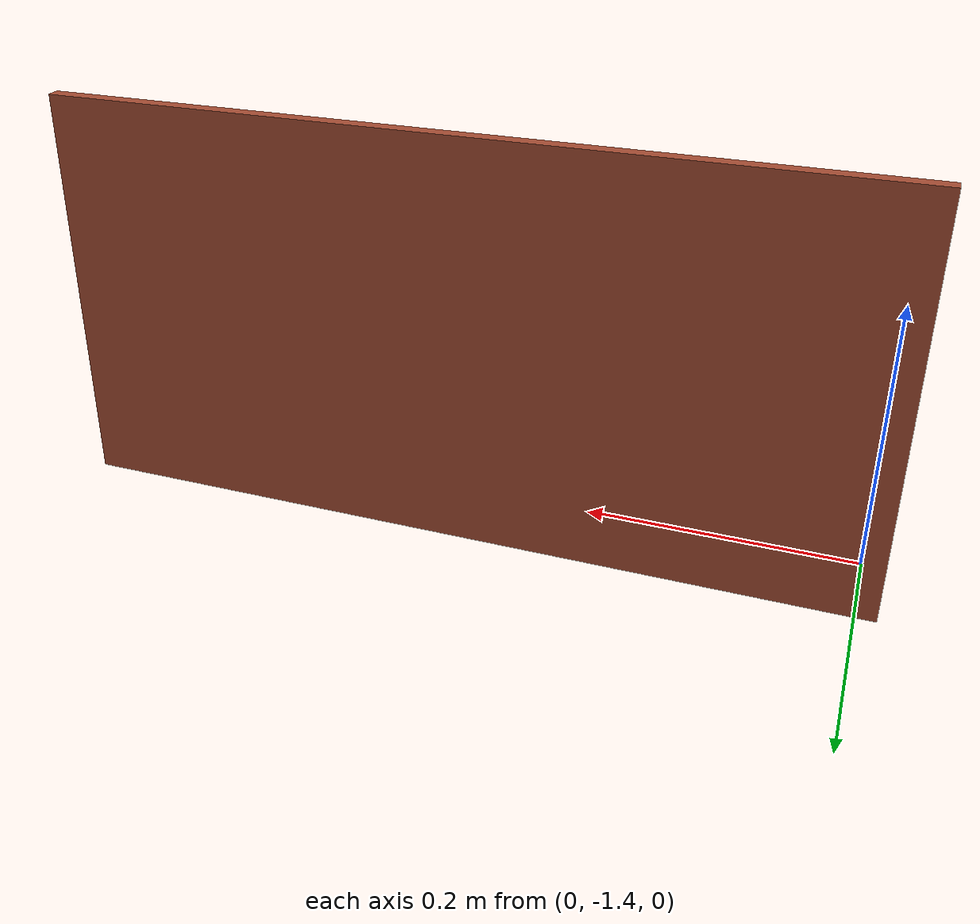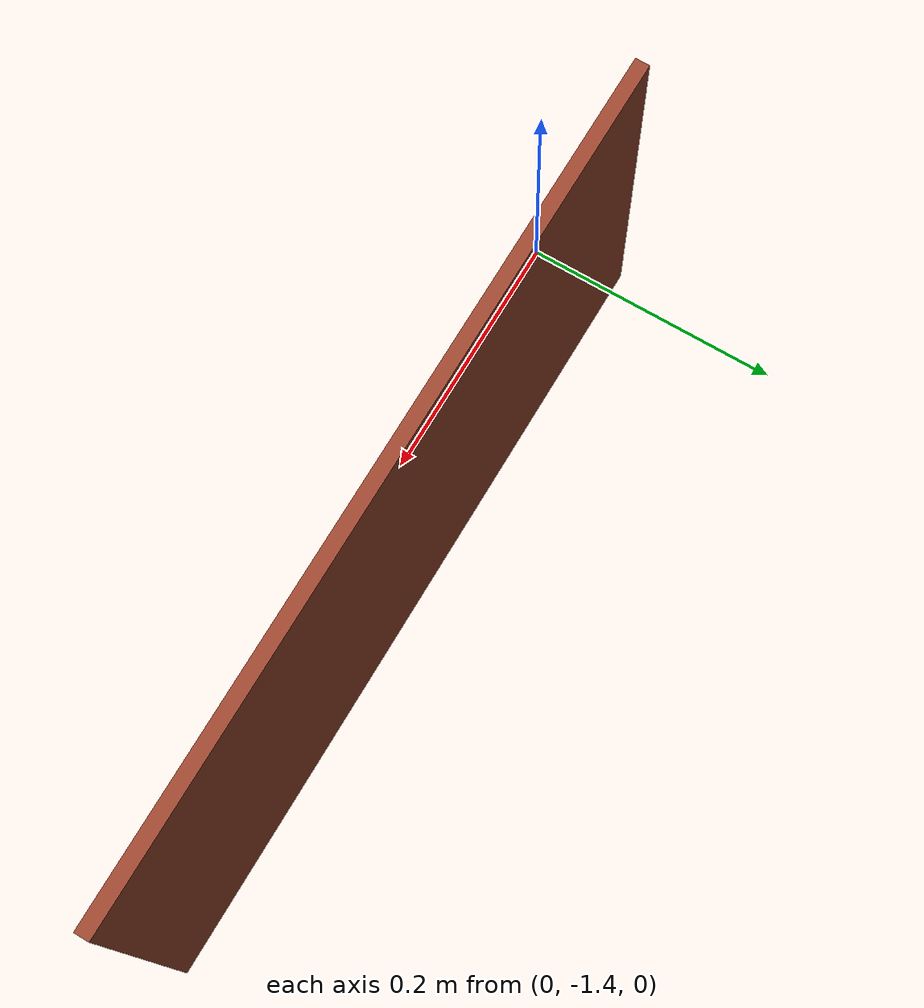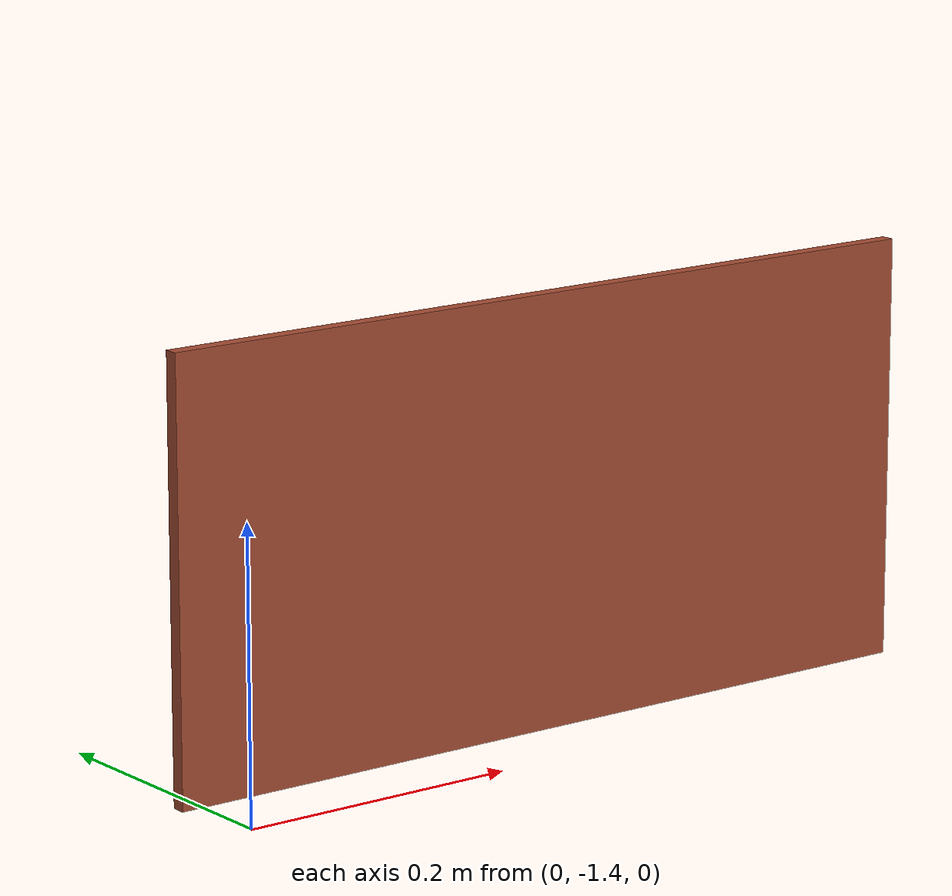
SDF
<?xml version='1.0'?>
<sdf version='1.7'>
  <model name='fusta3'>
    <pose>0.285 -0.6725 0 0 -0 0</pose>
    <link name='Wall_4'>
      <collision name='Wall_4_Collision'>
        <geometry>
          <box>
            <size>0.6 0.01 0.3</size>
          </box>
        </geometry>
        <pose>0 0 0.15 0 -0 0</pose>
      </collision>
      <visual name='Wall_4_Visual'>
        <pose>0 0 0.15 0 -0 0</pose>
        <geometry>
          <box>
            <size>0.6 0.01 0.3</size>
          </box>
        </geometry>
        <material>
          <script>
            <uri>file://media/materials/scripts/gazebo.material</uri>
            <name>Gazebo/Bricks</name>
          </script>
          <ambient>0.996078 0.47451 0.0196078 1</ambient>
        </material>
        <meta>
          <layer>0</layer>
        </meta>
      </visual>
      <pose>-0 -0.6675 0 0 -0 3.14159</pose>
    </link>
    <static>1</static>
  </model>
</sdf>
